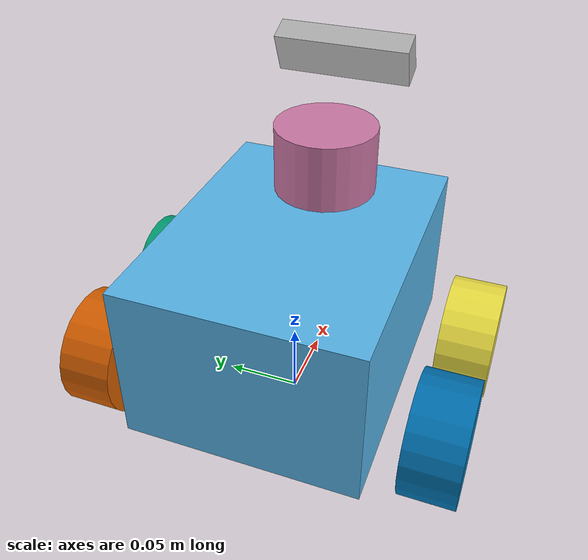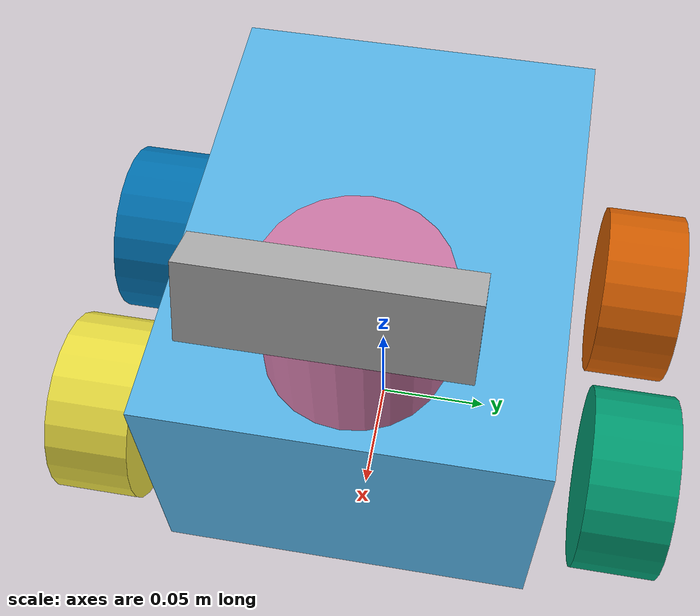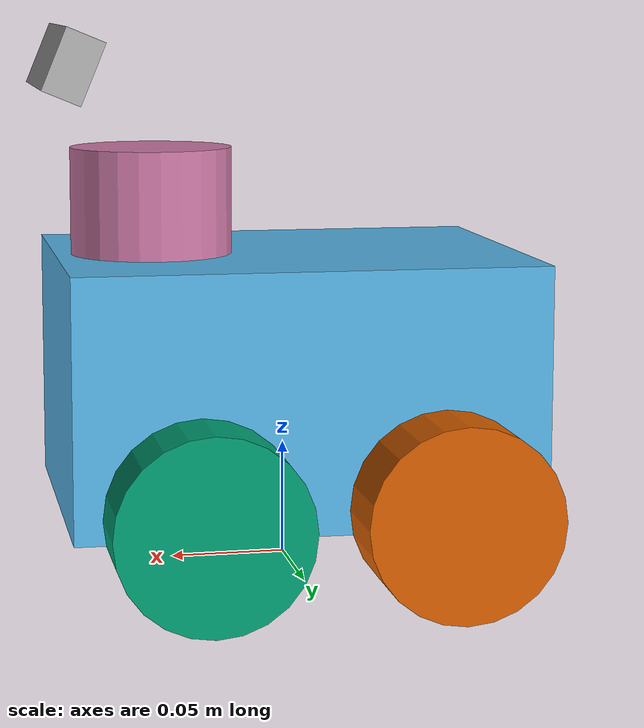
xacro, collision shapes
<?xml version="1.0"?>
<robot name="koubot" xmlns:xacro="http://www.ros.org/wiki/xacro">

    <xacro:property name="robot_name" value="koubot"/>

    <xacro:property name="chassis_mass" value="5.0"/>
    <xacro:property name="chassis_width" value="0.155"/>
    <xacro:property name="chassis_depth" value="0.2"/>
    <xacro:property name="chassis_height" value="0.11"/>

    <xacro:property name="wheel_mass" value="0.5"/>
    <xacro:property name="wheel_radius" value="0.04"/>
    <xacro:property name="wheel_length" value="0.036"/>
    <xacro:property name="wheel_offset_x" value="0.05"/>
    <xacro:property name="wheel_offset_y" value="0.114"/>
    <xacro:property name="wheel_offset_z" value="0.04"/>

    <xacro:property name="lidar_mass" value="0.2"/>
    <xacro:property name="lidar_radius" value="0.035"/>
    <xacro:property name="lidar_length" value="0.05"/>

    <xacro:property name="oakd_length" value="0.091" />
    <xacro:property name="oakd_width" value="0.028" />
    <xacro:property name="oakd_depth" value="0.0175" />
    <xacro:property name="oakd_mass" value="0.061" />

    <xacro:property name="M_PI" value="3.141592654"/>

    <!--Inertia Calculator for Chassis-->
    <xacro:macro name="chassis_inertia" params="mass_chassis x y z">
        <inertia  ixx="${mass_chassis*(y*y+z*z)/12.0}" ixy = "0" ixz = "0"
              iyy="${mass_chassis*(x*x+z*z)/12.0}" iyz = "0"
              izz="${mass_chassis*(x*x+y*y)/12.0}"
        />
    </xacro:macro>

    <!--Inertia Calculator for Camera-->
    <xacro:macro name="camera_inertia" params="mass_camera x y z">
        <inertia  ixx="${mass_camera*(y*y+z*z)/12.0}" ixy = "0" ixz = "0"
              iyy="${mass_camera*(x*x+z*z)/12.0}" iyz = "0"
              izz="${mass_camera*(x*x+y*y)/12.0}"
        />
    </xacro:macro>

    <!--Inertia Calculator for Wheels-->
    <xacro:macro name="wheels_inertia" params="mass_wheel r h">
        <inertia  ixx="${mass_wheel*(3*r*r + h*h)/12.0}" ixy = "0" ixz = "0"
              iyy="${mass_wheel*(3*r*r + h*h)/12.0}" iyz = "0"
              izz="${mass_wheel*(r*r)/2.0}"
        />
    </xacro:macro>

    <!--Inertia Calculator for LiDAR-->
    <xacro:macro name="lidar_inertia" params="mass_lidar r h">
        <inertia  ixx="${mass_lidar*(3*r*r + h*h)/12.0}" ixy = "0" ixz = "0"
              iyy="${mass_lidar*(3*r*r + h*h)/12.0}" iyz = "0"
              izz="${mass_lidar*(r*r)/2.0}"
        />
    </xacro:macro>

    <!-- BASE FOOTPRINT -->
    <link name="base_footprint">
        <inertial>
            <mass value="0.0001"/>
            <origin xyz="0 0 0"/>
            <inertia ixx="0.0001" ixy="0.0" ixz="0.0" iyy="0.0001" iyz="0.0" izz="0.0001"/>
        </inertial>
        <visual>
            <origin rpy="0 0 0" xyz="0 0 0"/>
            <geometry>
                <box size="0.001 0.001 0.001"/>
            </geometry>
        </visual>
    </link>

    <joint name="base_footprint_joint" type="fixed">
        <origin xyz="0 0 0.081" rpy="0 0 0" />
        <parent link="base_footprint"/>
        <child link="base_link" />
    </joint>

<!-- BASE LINK -->
    <link name="base_link">
        <inertial>
            <mass value="${chassis_mass}" />
            <origin xyz="0 0 0.0" />
            <xacro:chassis_inertia mass_chassis="${chassis_mass}" x="${chassis_depth}" y="${chassis_width}" z="${chassis_height}"/>
        </inertial>
        <collision>
            <origin xyz="0 0 0" rpy="0 0 ${M_PI/2}" />
            <geometry>
                <box size="${chassis_width} ${chassis_depth} ${chassis_height}" />
            </geometry>
        </collision>
        <visual>
            <origin xyz="0 0 -${chassis_height/2}" rpy="-${M_PI/2} 0 0" />
            <geometry>
                <mesh filename="package://robot_description/meshes/chassis.dae"/>
            </geometry>
        </visual>
    </link>

    <!-- Joint - base_link / front left wheel -->
    <joint name="joint_base_link_front_left_wheel" type="continuous">
        <origin rpy="0 0 0" xyz="${wheel_offset_x} ${wheel_offset_y} -${wheel_offset_z}" />
        <child link="front_left_wheel" />
        <parent link="base_link" />
        <axis rpy="0 0 0" xyz="0 1 0" />
        <limit effort="10000" velocity="1000" />
        <joint_properties damping="1.0" friction="1.0" />
    </joint>

    <!-- FRONT LEFT WHEEL -->
    <link name="front_left_wheel">
        <inertial>
            <mass value="${wheel_mass}" />
            <origin xyz="0 0 0" rpy="${M_PI/2} 0 0" />
            <xacro:wheels_inertia mass_wheel="${wheel_mass}" r="${wheel_radius}" h="${wheel_length}"/>
        </inertial>

        <collision>
            <origin rpy="${M_PI/2} 0 0" xyz="0 0 0" />
            <geometry>
                <cylinder length="${wheel_length}" radius="${wheel_radius}"/>
            </geometry>
        </collision>
        <visual>
            <origin rpy="${M_PI} 0 0" xyz="0 0 0" />
            <geometry>
                <mesh filename="package://robot_description/meshes/wheels.dae"/>
            </geometry>
        </visual>
    </link>

    <!-- Joint - base_link / front right wheel -->
    <joint name="joint_base_link_front_right_wheel" type="continuous">
        <origin rpy="0 0 0" xyz="${wheel_offset_x} -${wheel_offset_y} -${wheel_offset_z}" />
        <child link="front_right_wheel" />
        <parent link="base_link" />
        <axis rpy="0 0 0" xyz="0 1 0" />
        <limit effort="10000" velocity="1000" />
        <joint_properties damping="1.0" friction="1.0" />
    </joint>

    <!-- FRONT RIGHT WHEEL -->
    <link name="front_right_wheel">
        <inertial>
            <mass value="${wheel_mass}" />
            <origin xyz="0 0 0" rpy="${M_PI/2} 0 0" />
            <xacro:wheels_inertia mass_wheel="${wheel_mass}" r="${wheel_radius}" h="${wheel_length}"/>
        </inertial>

        <collision>
            <origin rpy="${M_PI/2} 0 0" xyz="0 0 0" />
            <geometry>
                <cylinder length="${wheel_length}" radius="${wheel_radius}"/>
            </geometry>
        </collision>
        <visual>
            <origin rpy="${M_PI} 0 0" xyz="0 0 0" />
            <geometry>
                <mesh filename="package://robot_description/meshes/wheels.dae"/>
            </geometry>
        </visual>
    </link>

    <!-- Joint - base_link / back right wheel -->
    <joint name="joint_base_link_back_right_wheel" type="continuous">
        <origin rpy="0 0 0" xyz="-${wheel_offset_x} -${wheel_offset_y} -${wheel_offset_z}" />
        <child link="back_right_wheel" />
        <parent link="base_link" />
        <axis rpy="0 0 0" xyz="0 1 0" />
        <limit effort="10000" velocity="1000" />
        <joint_properties damping="1.0" friction="1.0" />
    </joint>

    <!-- BACK RIGHT WHEEL -->
    <link name="back_right_wheel">
        <inertial>
            <mass value="${wheel_mass}" />
            <origin xyz="0 0 0" rpy="${M_PI/2} 0 0" />
            <xacro:wheels_inertia mass_wheel="${wheel_mass}" r="${wheel_radius}" h="${wheel_length}"/>
        </inertial>

        <collision>
            <origin rpy="${M_PI/2} 0 0" xyz="0 0 0" />
            <geometry>
                <cylinder length="${wheel_length}" radius="${wheel_radius}"/>
            </geometry>
        </collision>
        <visual>
            <origin rpy="${M_PI} 0 0" xyz="0 0 0" />
            <geometry>
                <mesh filename="package://robot_description/meshes/wheels.dae"/>
            </geometry>
        </visual>
    </link>

    <!-- Joint - base_link / back left wheel -->
    <joint name="joint_base_link_back_left_wheel" type="continuous">
        <origin rpy="0 0 0" xyz="-${wheel_offset_x} ${wheel_offset_y} -${wheel_offset_z}" />
        <child link="back_left_wheel" />
        <parent link="base_link" />
        <axis rpy="0 0 0" xyz="0 1 0" />
        <limit effort="10000" velocity="1000" />
        <joint_properties damping="1.0" friction="1.0" />
    </joint>

    <!-- BACK LEFT WHEEL -->
    <link name="back_left_wheel">
        <inertial>
            <mass value="${wheel_mass}" />
            <origin xyz="0 0 0" rpy="${M_PI/2} 0 0" />
            <xacro:wheels_inertia mass_wheel="${wheel_mass}" r="${wheel_radius}" h="${wheel_length}"/>
        </inertial>

        <collision>
            <origin rpy="${M_PI/2} 0 0" xyz="0 0 0" />
            <geometry>
                <cylinder length="${wheel_length}" radius="${wheel_radius}"/>
            </geometry>
        </collision>
        <visual>
            <origin rpy="${M_PI} 0 0" xyz="0 0 0" />
            <geometry>
                <mesh filename="package://robot_description/meshes/wheels.dae"/>
            </geometry>
        </visual>
    </link>

    <!-- LiDAR - RPA1-->

    <link name="lidar_link" type="laser">

        <inertial>
            <mass value="${lidar_mass}"/>
            <origin rpy="0 0 0.0" xyz="0 0 0.0"/>
            <xacro:lidar_inertia mass_lidar="${lidar_mass}" r="${lidar_radius}" h="${lidar_length}"/>
        </inertial>
        <visual>
            <origin rpy="1.57 0 ${M_PI}" xyz="-0.015 -0.033 -0.06"/>
            <geometry>
                <mesh filename="package://robot_description/meshes/lidar.dae" scale="0.001 0.001 0.001"/>
            </geometry>
        </visual>
        <collision>
            <origin rpy="0 0 0" xyz="-0.037 0.0 -0.036"/>
            <geometry>
                <cylinder length="${lidar_length}" radius="${lidar_radius}"/>
            </geometry>
        </collision>
    </link>

    <joint name="lidar_joint" type="fixed">
        <origin rpy="0 0 0" xyz="0.095 0 0.112"/>
        <parent link="base_link"/>
        <child link="lidar_link"/>
    </joint>

    <!--Laser sensor plugin-->
    <gazebo reference="lidar_link">
        <sensor name="head_hokuyo_sensor" type="ray">
            <pose>0 0 0 0 0 0</pose>
            <visualize>false</visualize>
            <update_rate>20</update_rate>
            <always_on>true</always_on>
            <ray>
                <scan>
                    <horizontal>
                        <samples>1080</samples>
                        <resolution>1.0</resolution>
                        <min_angle>-1.570796</min_angle>
                        <max_angle>1.570796</max_angle>
                    </horizontal>
                </scan>
                <range>
                    <min>0.02</min>
                    <max>10.0</max>
                    <resolution>0.01</resolution>
                </range>
                <noise>
                    <type>gaussian</type>
                    <mean>0.0</mean>
                    <stddev>0.01</stddev>
                </noise>
            </ray>
            <plugin name="laser" filename="libgazebo_ros_ray_sensor.so">
                <ros>
                    <remapping>~/out:=laser_scan</remapping>
                </ros>
                <output_type>sensor_msgs/LaserScan</output_type>
                <frame_name>lidar_link</frame_name>
            </plugin>
        </sensor>
    </gazebo>

      <!-- Camera joint -->

    <joint name="camera_joint" type="fixed">
        <!-- Point cloud frustrum is 90 degrees off from visual frame -->
        <origin rpy=" 0 -${M_PI/8} 0" xyz="0.1 0 0.15" />
        <parent link="base_link" />
        <child link="camera_oakd_lite" />
    </joint>

    <!-- Camera - Oak-D Lite -->

    <link name="camera_oakd_lite">
        <pose>0.0 0.0 0.0 0.0 0.0 0.0</pose>
        <inertial>
            <mass value="${oakd_mass}"/>
            <origin rpy="0 0 0.0" xyz="0 0 0"/>
            <xacro:camera_inertia mass_camera="${oakd_mass}" x="${oakd_length}" y="${oakd_width}" z="${oakd_depth}"/>
        </inertial>
        <visual>
            <origin rpy="${M_PI/2} 0 -${M_PI/2}" xyz="-0.01 0.04 -0.02" />
            <geometry>
                <mesh filename="package://robot_description/meshes/OAK-D-LITE.dae" scale="0.001 0.001 0.001"/>
            </geometry>
        </visual>
        <collision>
            <origin rpy="${M_PI/2} 0 -${M_PI/2}" xyz="-0.01 0.0 -0.01" />
            <geometry>
                <box size="${oakd_length} ${oakd_width} ${oakd_depth}"/>
            </geometry>
        </collision>
    </link>

    <joint name="camera_optical_joint" type="fixed">
        <parent link="camera_oakd_lite"/>
        <child link="camera_link_optical"/>
        <origin xyz="0 0 0.0" rpy="0 0 0"/>
    </joint>

    <link name="camera_link_optical"></link>\

    <!-- depth camera -->
    <joint name="camera_depth_optical_joint" type="fixed">
        <parent link="camera_oakd_lite"/>
        <child link="camera_depth_link_optical"/>
        <origin xyz="0 0 0.0" rpy="${M_PI/2} ${M_PI} ${M_PI/2}"/>
    </joint>

     <link name="camera_depth_link_optical"></link>
    <!-- depth camera -->

    <gazebo reference="camera_oakd_lite">

        <!-- camera sensor -->
        <sensor name="camera" type="camera">
            <pose>0 0 0 0 0 0</pose>
            <visualize>true</visualize>
            <update_rate>10</update_rate>
            <camera>
                <horizontal_fov>1.089</horizontal_fov>
                <image>
                    <format>R8G8B8</format>
                    <width>640</width>
                    <height>480</height>
                </image>
                <clip>
                    <near>0.05</near>
                    <far>8.0</far>
                </clip>
            </camera>

            <plugin name="depth_camera_controller" filename="libgazebo_ros_camera.so">
                <frame_name>camera_link_optical</frame_name>
                <topicName>/camera/image_raw</topicName>
            </plugin>
        </sensor>

        <!-- Point Cloud Sensor -->
        <sensor name="point_cloud_sensor" type="depth">
            <!-- Adjust the pose of the point cloud sensor relative to the camera link -->
            <pose>0 0 0 0 0 0</pose>
            <!-- Define parameters for the point cloud sensor -->
            <visualize>true</visualize>
            <update_rate>10</update_rate>
            <depth>
                <!-- Adjust depth sensor parameters as needed -->
                <horizontal_fov>1.089</horizontal_fov>
                <!-- Specify clip planes if needed -->
                <clip>
                    <near>0.05</near>
                    <far>8.0</far>
                </clip>
            </depth>
            <!-- Plugin for handling point cloud data -->
            <plugin name="point_cloud_controller" filename="libgazebo_ros_camera.so">
                <!-- Specify the TF frame for the point cloud sensor -->
                <frame_name>camera_depth_link_optical</frame_name>
                <!-- Publish point cloud data to this topic -->
                <topicName>/point_cloud_sensor/points</topicName>
                <!-- Specify the encoding for the point cloud data -->
                <encoding>B8G8R8</encoding> <!-- Assuming your plugin supports BGR for point clouds -->

            </plugin>
        </sensor>
    </gazebo>

    <!-- Add Gazebo Properties from file named koubot_base.gazebo -->

    <xacro:include filename="$(find robot_description)/urdf/base/koubot_base.gazebo" />

</robot>
